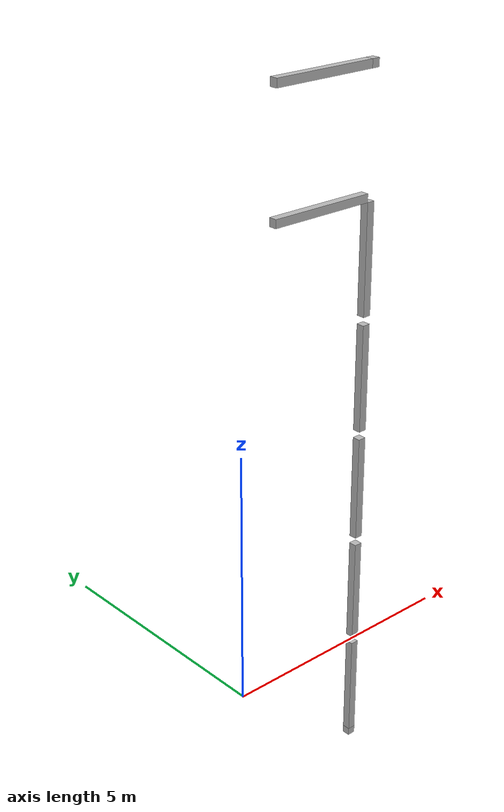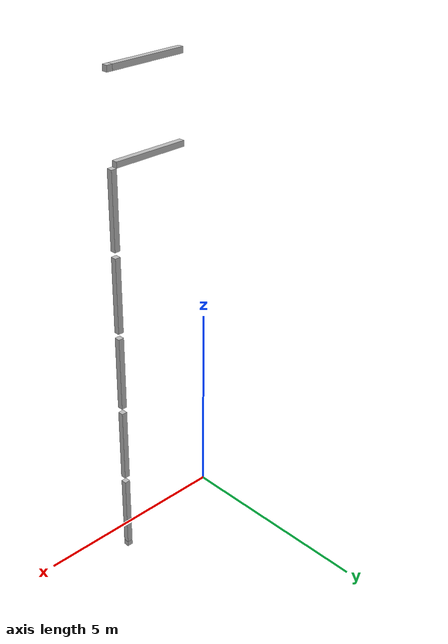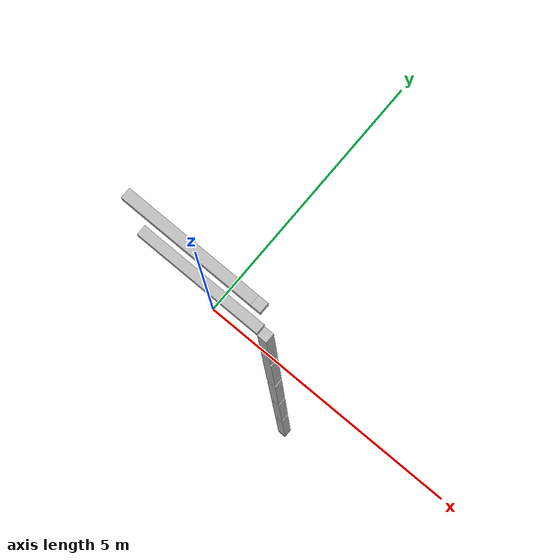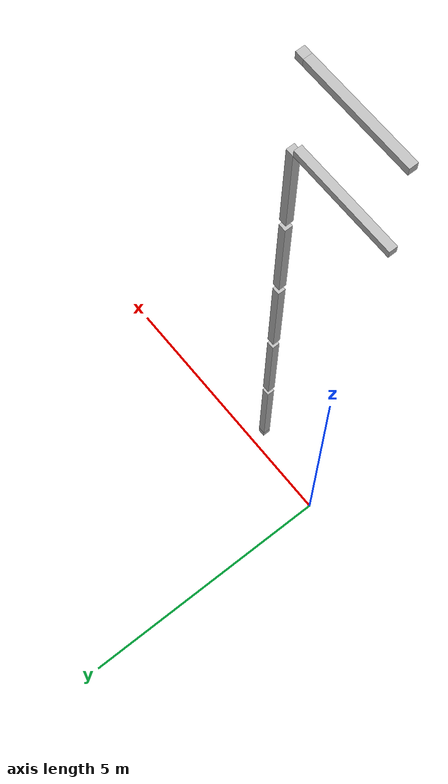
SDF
<sdf version="1.7">
 <world name="default">
  <model name="orthogonal_747_2.000.15_TS">
   <static>1</static>
   <link name="u_link_0_2_4">
    <inertial>
     <mass>1</mass>
     <inertia>
      <ixx>0.166667</ixx>
      <ixy>0</ixy>
      <ixz>0</ixz>
      <iyy>0.166667</iyy>
      <iyz>0</iyz>
      <izz>0.166667</izz>
     </inertia>
    </inertial>
    <pose>8.6 4.3 1.075 0 -0 0</pose>
    <visual name="visual_0">
     <laser_retro>421</laser_retro>
     <geometry><box><size>0.15 1e-06 0.15</size></box></geometry>
     <material>
      <script><name>Gazebo/Grey</name><uri>file://media/materials/scripts/gazebo.material</uri></script>
      <shader type="pixel"><normal_map>__default__</normal_map></shader>
      <ambient>0.678 0.498 0.659 1</ambient>
      <diffuse>0.7 0.7 0.7 1</diffuse>
      <specular>0.01 0.01 0.01 1</specular>
      <emissive>0 0 0 1</emissive>
     </material>
     <pose>0 -0.075 0 0 -0 0</pose>
     <transparency>1</transparency>
    </visual>
    <visual name="visual_1">
     <laser_retro>422</laser_retro>
     <geometry><box><size>0.15 1e-06 0.15</size></box></geometry>
     <material>
      <script><name>Gazebo/Grey</name><uri>file://media/materials/scripts/gazebo.material</uri></script>
      <shader type="pixel"><normal_map>__default__</normal_map></shader>
      <ambient>0.447 0.624 0.812 1</ambient>
      <diffuse>0.7 0.7 0.7 1</diffuse>
      <specular>0.01 0.01 0.01 1</specular>
      <emissive>0 0 0 1</emissive>
     </material>
     <pose>0 0.075 0 0 -0 0</pose>
     <transparency>1</transparency>
    </visual>
    <visual name="visual_2">
     <laser_retro>423</laser_retro>
     <geometry><box><size>0.15 0.15 1e-06</size></box></geometry>
     <material>
      <script><name>Gazebo/Grey</name><uri>file://media/materials/scripts/gazebo.material</uri></script>
      <shader type="pixel"><normal_map>__default__</normal_map></shader>
      <ambient>0.988 0.686 0.243 1</ambient>
      <diffuse>0.7 0.7 0.7 1</diffuse>
      <specular>0.01 0.01 0.01 1</specular>
      <emissive>0 0 0 1</emissive>
     </material>
     <pose>0 0 -0.075 0 -0 0</pose>
     <transparency>1</transparency>
    </visual>
    <visual name="visual_3">
     <laser_retro>424</laser_retro>
     <geometry><box><size>1e-06 0.15 0.15</size></box></geometry>
     <material>
      <script><name>Gazebo/Grey</name><uri>file://media/materials/scripts/gazebo.material</uri></script>
      <shader type="pixel"><normal_map>__default__</normal_map></shader>
      <ambient>0.988 0.914 0.31 1</ambient>
      <diffuse>0.7 0.7 0.7 1</diffuse>
      <specular>0.01 0.01 0.01 1</specular>
      <emissive>0 0 0 1</emissive>
     </material>
     <pose>0.075 0 0 0 -0 0</pose>
     <transparency>1</transparency>
    </visual>
    <visual name="visual_4">
     <laser_retro>425</laser_retro>
     <geometry><box><size>0.15 0.15 1e-06</size></box></geometry>
     <material>
      <script><name>Gazebo/Grey</name><uri>file://media/materials/scripts/gazebo.material</uri></script>
      <shader type="pixel"><normal_map>__default__</normal_map></shader>
      <ambient>0.937 0.161 0.161 1</ambient>
      <diffuse>0.7 0.7 0.7 1</diffuse>
      <specular>0.01 0.01 0.01 1</specular>
      <emissive>0 0 0 1</emissive>
     </material>
     <pose>0 0 0.075 0 -0 0</pose>
     <transparency>1</transparency>
    </visual>
    <visual name="visual_5">
     <laser_retro>426</laser_retro>
     <geometry><box><size>1e-06 0.15 0.15</size></box></geometry>
     <material>
      <script><name>Gazebo/Grey</name><uri>file://media/materials/scripts/gazebo.material</uri></script>
      <shader type="pixel"><normal_map>__default__</normal_map></shader>
      <ambient>0.541 0.886 0.204 1</ambient>
      <diffuse>0.7 0.7 0.7 1</diffuse>
      <specular>0.01 0.01 0.01 1</specular>
      <emissive>0 0 0 1</emissive>
     </material>
     <pose>-0.075 0 0 0 -0 0</pose>
     <transparency>1</transparency>
    </visual>
    <visual name="visual_texture">
     <geometry><box><size>0.149985 0.149985 0.149985</size></box></geometry>
     <material>
      <script>
       <uri>model://BASE_MODELS/simple_block_v2_textured/materials/scripts</uri>
       <uri>model://BASE_MODELS/simple_block_v2_textured/materials/textures</uri>
       <name>metal</name>
      </script>
     </material>
     <laser_retro>427</laser_retro>
    </visual>
    <collision name="collision">
     <geometry><box><size>0.15 0.15 0.15</size></box></geometry>
     <surface>
      <friction>
       <ode><mu>1</mu><mu2>1</mu2><fdir1>0 0 0</fdir1><slip1>0</slip1><slip2>0</slip2></ode>
       <torsional>
        <coefficient>1</coefficient>
        <patch_radius>0</patch_radius>
        <surface_radius>0</surface_radius>
        <use_patch_radius>1</use_patch_radius>
        <ode><slip>0</slip></ode>
       </torsional>
      </friction>
      <bounce><restitution_coefficient>0</restitution_coefficient><threshold>1e+06</threshold></bounce>
      <contact>
       <collide_without_contact>0</collide_without_contact>
       <collide_without_contact_bitmask>1</collide_without_contact_bitmask>
       <collide_bitmask>1</collide_bitmask>
       <ode>
        <soft_cfm>0</soft_cfm>
        <soft_erp>0.2</soft_erp>
        <kp>1e+13</kp>
        <kd>1</kd>
        <max_vel>0.01</max_vel>
        <min_depth>0</min_depth>
       </ode>
       <bullet>
        <split_impulse>1</split_impulse>
        <split_impulse_penetration_threshold>-0.01</split_impulse_penetration_threshold>
        <soft_cfm>0</soft_cfm>
        <soft_erp>0.2</soft_erp>
        <kp>1e+13</kp>
        <kd>1</kd>
       </bullet>
      </contact>
     </surface>
    </collision>
   </link>
   <link name="z_link_1_2_4">
    <inertial>
     <mass>1</mass>
     <inertia>
      <ixx>0.166667</ixx>
      <ixy>0</ixy>
      <ixz>0</ixz>
      <iyy>0.166667</iyy>
      <iyz>0</iyz>
      <izz>0.166667</izz>
     </inertia>
    </inertial>
    <pose>8.6 4.3 2.15 0 -0 0</pose>
    <visual name="visual_0">
     <laser_retro>1247</laser_retro>
     <geometry><box><size>0.15 1e-06 2</size></box></geometry>
     <material>
      <script><name>Gazebo/Grey</name><uri>file://media/materials/scripts/gazebo.material</uri></script>
      <shader type="pixel"><normal_map>__default__</normal_map></shader>
      <ambient>0.678 0.498 0.659 1</ambient>
      <diffuse>0.7 0.7 0.7 1</diffuse>
      <specular>0.01 0.01 0.01 1</specular>
      <emissive>0 0 0 1</emissive>
     </material>
     <pose>0 -0.075 0 0 -0 0</pose>
     <transparency>1</transparency>
    </visual>
    <visual name="visual_1">
     <laser_retro>1248</laser_retro>
     <geometry><box><size>0.15 1e-06 2</size></box></geometry>
     <material>
      <script><name>Gazebo/Grey</name><uri>file://media/materials/scripts/gazebo.material</uri></script>
      <shader type="pixel"><normal_map>__default__</normal_map></shader>
      <ambient>0.447 0.624 0.812 1</ambient>
      <diffuse>0.7 0.7 0.7 1</diffuse>
      <specular>0.01 0.01 0.01 1</specular>
      <emissive>0 0 0 1</emissive>
     </material>
     <pose>0 0.075 0 0 -0 0</pose>
     <transparency>1</transparency>
    </visual>
    <visual name="visual_2">
     <laser_retro>1249</laser_retro>
     <geometry><box><size>0.15 0.15 1e-06</size></box></geometry>
     <material>
      <script><name>Gazebo/Grey</name><uri>file://media/materials/scripts/gazebo.material</uri></script>
      <shader type="pixel"><normal_map>__default__</normal_map></shader>
      <ambient>0.988 0.686 0.243 1</ambient>
      <diffuse>0.7 0.7 0.7 1</diffuse>
      <specular>0.01 0.01 0.01 1</specular>
      <emissive>0 0 0 1</emissive>
     </material>
     <pose>0 0 -1 0 -0 0</pose>
     <transparency>1</transparency>
    </visual>
    <visual name="visual_3">
     <laser_retro>1250</laser_retro>
     <geometry><box><size>1e-06 0.15 2</size></box></geometry>
     <material>
      <script><name>Gazebo/Grey</name><uri>file://media/materials/scripts/gazebo.material</uri></script>
      <shader type="pixel"><normal_map>__default__</normal_map></shader>
      <ambient>0.988 0.914 0.31 1</ambient>
      <diffuse>0.7 0.7 0.7 1</diffuse>
      <specular>0.01 0.01 0.01 1</specular>
      <emissive>0 0 0 1</emissive>
     </material>
     <pose>0.075 0 0 0 -0 0</pose>
     <transparency>1</transparency>
    </visual>
    <visual name="visual_4">
     <laser_retro>1251</laser_retro>
     <geometry><box><size>0.15 0.15 1e-06</size></box></geometry>
     <material>
      <script><name>Gazebo/Grey</name><uri>file://media/materials/scripts/gazebo.material</uri></script>
      <shader type="pixel"><normal_map>__default__</normal_map></shader>
      <ambient>0.937 0.161 0.161 1</ambient>
      <diffuse>0.7 0.7 0.7 1</diffuse>
      <specular>0.01 0.01 0.01 1</specular>
      <emissive>0 0 0 1</emissive>
     </material>
     <pose>0 0 1 0 -0 0</pose>
     <transparency>1</transparency>
    </visual>
    <visual name="visual_5">
     <laser_retro>1252</laser_retro>
     <geometry><box><size>1e-06 0.15 2</size></box></geometry>
     <material>
      <script><name>Gazebo/Grey</name><uri>file://media/materials/scripts/gazebo.material</uri></script>
      <shader type="pixel"><normal_map>__default__</normal_map></shader>
      <ambient>0.541 0.886 0.204 1</ambient>
      <diffuse>0.7 0.7 0.7 1</diffuse>
      <specular>0.01 0.01 0.01 1</specular>
      <emissive>0 0 0 1</emissive>
     </material>
     <pose>-0.075 0 0 0 -0 0</pose>
     <transparency>1</transparency>
    </visual>
    <visual name="visual_texture">
     <geometry><box><size>0.149985 0.149985 1.9998</size></box></geometry>
     <material>
      <script>
       <uri>model://BASE_MODELS/simple_block_v2_textured/materials/scripts</uri>
       <uri>model://BASE_MODELS/simple_block_v2_textured/materials/textures</uri>
       <name>metal</name>
      </script>
     </material>
     <laser_retro>1253</laser_retro>
    </visual>
    <collision name="collision">
     <geometry><box><size>0.15 0.15 2</size></box></geometry>
     <surface>
      <friction>
       <ode><mu>1</mu><mu2>1</mu2><fdir1>0 0 0</fdir1><slip1>0</slip1><slip2>0</slip2></ode>
       <torsional>
        <coefficient>1</coefficient>
        <patch_radius>0</patch_radius>
        <surface_radius>0</surface_radius>
        <use_patch_radius>1</use_patch_radius>
        <ode><slip>0</slip></ode>
       </torsional>
      </friction>
      <bounce><restitution_coefficient>0</restitution_coefficient><threshold>1e+06</threshold></bounce>
      <contact>
       <collide_without_contact>0</collide_without_contact>
       <collide_without_contact_bitmask>1</collide_without_contact_bitmask>
       <collide_bitmask>1</collide_bitmask>
       <ode>
        <soft_cfm>0</soft_cfm>
        <soft_erp>0.2</soft_erp>
        <kp>1e+13</kp>
        <kd>1</kd>
        <max_vel>0.01</max_vel>
        <min_depth>0</min_depth>
       </ode>
       <bullet>
        <split_impulse>1</split_impulse>
        <split_impulse_penetration_threshold>-0.01</split_impulse_penetration_threshold>
        <soft_cfm>0</soft_cfm>
        <soft_erp>0.2</soft_erp>
        <kp>1e+13</kp>
        <kd>1</kd>
       </bullet>
      </contact>
     </surface>
    </collision>
   </link>
   <link name="z_link_2_2_4">
    <inertial>
     <mass>1</mass>
     <inertia>
      <ixx>0.166667</ixx>
      <ixy>0</ixy>
      <ixz>0</ixz>
      <iyy>0.166667</iyy>
      <iyz>0</iyz>
      <izz>0.166667</izz>
     </inertia>
    </inertial>
    <pose>8.6 4.3 4.3 0 -0 0</pose>
    <visual name="visual_0">
     <laser_retro>2150</laser_retro>
     <geometry><box><size>0.15 1e-06 2</size></box></geometry>
     <material>
      <script><name>Gazebo/Grey</name><uri>file://media/materials/scripts/gazebo.material</uri></script>
      <shader type="pixel"><normal_map>__default__</normal_map></shader>
      <ambient>0.678 0.498 0.659 1</ambient>
      <diffuse>0.7 0.7 0.7 1</diffuse>
      <specular>0.01 0.01 0.01 1</specular>
      <emissive>0 0 0 1</emissive>
     </material>
     <pose>0 -0.075 0 0 -0 0</pose>
     <transparency>1</transparency>
    </visual>
    <visual name="visual_1">
     <laser_retro>2151</laser_retro>
     <geometry><box><size>0.15 1e-06 2</size></box></geometry>
     <material>
      <script><name>Gazebo/Grey</name><uri>file://media/materials/scripts/gazebo.material</uri></script>
      <shader type="pixel"><normal_map>__default__</normal_map></shader>
      <ambient>0.447 0.624 0.812 1</ambient>
      <diffuse>0.7 0.7 0.7 1</diffuse>
      <specular>0.01 0.01 0.01 1</specular>
      <emissive>0 0 0 1</emissive>
     </material>
     <pose>0 0.075 0 0 -0 0</pose>
     <transparency>1</transparency>
    </visual>
    <visual name="visual_2">
     <laser_retro>2152</laser_retro>
     <geometry><box><size>0.15 0.15 1e-06</size></box></geometry>
     <material>
      <script><name>Gazebo/Grey</name><uri>file://media/materials/scripts/gazebo.material</uri></script>
      <shader type="pixel"><normal_map>__default__</normal_map></shader>
      <ambient>0.988 0.686 0.243 1</ambient>
      <diffuse>0.7 0.7 0.7 1</diffuse>
      <specular>0.01 0.01 0.01 1</specular>
      <emissive>0 0 0 1</emissive>
     </material>
     <pose>0 0 -1 0 -0 0</pose>
     <transparency>1</transparency>
    </visual>
    <visual name="visual_3">
     <laser_retro>2153</laser_retro>
     <geometry><box><size>1e-06 0.15 2</size></box></geometry>
     <material>
      <script><name>Gazebo/Grey</name><uri>file://media/materials/scripts/gazebo.material</uri></script>
      <shader type="pixel"><normal_map>__default__</normal_map></shader>
      <ambient>0.988 0.914 0.31 1</ambient>
      <diffuse>0.7 0.7 0.7 1</diffuse>
      <specular>0.01 0.01 0.01 1</specular>
      <emissive>0 0 0 1</emissive>
     </material>
     <pose>0.075 0 0 0 -0 0</pose>
     <transparency>1</transparency>
    </visual>
    <visual name="visual_4">
     <laser_retro>2154</laser_retro>
     <geometry><box><size>0.15 0.15 1e-06</size></box></geometry>
     <material>
      <script><name>Gazebo/Grey</name><uri>file://media/materials/scripts/gazebo.material</uri></script>
      <shader type="pixel"><normal_map>__default__</normal_map></shader>
      <ambient>0.937 0.161 0.161 1</ambient>
      <diffuse>0.7 0.7 0.7 1</diffuse>
      <specular>0.01 0.01 0.01 1</specular>
      <emissive>0 0 0 1</emissive>
     </material>
     <pose>0 0 1 0 -0 0</pose>
     <transparency>1</transparency>
    </visual>
    <visual name="visual_5">
     <laser_retro>2155</laser_retro>
     <geometry><box><size>1e-06 0.15 2</size></box></geometry>
     <material>
      <script><name>Gazebo/Grey</name><uri>file://media/materials/scripts/gazebo.material</uri></script>
      <shader type="pixel"><normal_map>__default__</normal_map></shader>
      <ambient>0.541 0.886 0.204 1</ambient>
      <diffuse>0.7 0.7 0.7 1</diffuse>
      <specular>0.01 0.01 0.01 1</specular>
      <emissive>0 0 0 1</emissive>
     </material>
     <pose>-0.075 0 0 0 -0 0</pose>
     <transparency>1</transparency>
    </visual>
    <visual name="visual_texture">
     <geometry><box><size>0.149985 0.149985 1.9998</size></box></geometry>
     <material>
      <script>
       <uri>model://BASE_MODELS/simple_block_v2_textured/materials/scripts</uri>
       <uri>model://BASE_MODELS/simple_block_v2_textured/materials/textures</uri>
       <name>metal</name>
      </script>
     </material>
     <laser_retro>2156</laser_retro>
    </visual>
    <collision name="collision">
     <geometry><box><size>0.15 0.15 2</size></box></geometry>
     <surface>
      <friction>
       <ode><mu>1</mu><mu2>1</mu2><fdir1>0 0 0</fdir1><slip1>0</slip1><slip2>0</slip2></ode>
       <torsional>
        <coefficient>1</coefficient>
        <patch_radius>0</patch_radius>
        <surface_radius>0</surface_radius>
        <use_patch_radius>1</use_patch_radius>
        <ode><slip>0</slip></ode>
       </torsional>
      </friction>
      <bounce><restitution_coefficient>0</restitution_coefficient><threshold>1e+06</threshold></bounce>
      <contact>
       <collide_without_contact>0</collide_without_contact>
       <collide_without_contact_bitmask>1</collide_without_contact_bitmask>
       <collide_bitmask>1</collide_bitmask>
       <ode>
        <soft_cfm>0</soft_cfm>
        <soft_erp>0.2</soft_erp>
        <kp>1e+13</kp>
        <kd>1</kd>
        <max_vel>0.01</max_vel>
        <min_depth>0</min_depth>
       </ode>
       <bullet>
        <split_impulse>1</split_impulse>
        <split_impulse_penetration_threshold>-0.01</split_impulse_penetration_threshold>
        <soft_cfm>0</soft_cfm>
        <soft_erp>0.2</soft_erp>
        <kp>1e+13</kp>
        <kd>1</kd>
       </bullet>
      </contact>
     </surface>
    </collision>
   </link>
   <link name="z_link_3_2_4">
    <inertial>
     <mass>1</mass>
     <inertia>
      <ixx>0.166667</ixx>
      <ixy>0</ixy>
      <ixz>0</ixz>
      <iyy>0.166667</iyy>
      <iyz>0</iyz>
      <izz>0.166667</izz>
     </inertia>
    </inertial>
    <pose>8.6 4.3 6.45 0 -0 0</pose>
    <visual name="visual_0">
     <laser_retro>3053</laser_retro>
     <geometry><box><size>0.15 1e-06 2</size></box></geometry>
     <material>
      <script><name>Gazebo/Grey</name><uri>file://media/materials/scripts/gazebo.material</uri></script>
      <shader type="pixel"><normal_map>__default__</normal_map></shader>
      <ambient>0.678 0.498 0.659 1</ambient>
      <diffuse>0.7 0.7 0.7 1</diffuse>
      <specular>0.01 0.01 0.01 1</specular>
      <emissive>0 0 0 1</emissive>
     </material>
     <pose>0 -0.075 0 0 -0 0</pose>
     <transparency>1</transparency>
    </visual>
    <visual name="visual_1">
     <laser_retro>3054</laser_retro>
     <geometry><box><size>0.15 1e-06 2</size></box></geometry>
     <material>
      <script><name>Gazebo/Grey</name><uri>file://media/materials/scripts/gazebo.material</uri></script>
      <shader type="pixel"><normal_map>__default__</normal_map></shader>
      <ambient>0.447 0.624 0.812 1</ambient>
      <diffuse>0.7 0.7 0.7 1</diffuse>
      <specular>0.01 0.01 0.01 1</specular>
      <emissive>0 0 0 1</emissive>
     </material>
     <pose>0 0.075 0 0 -0 0</pose>
     <transparency>1</transparency>
    </visual>
    <visual name="visual_2">
     <laser_retro>3055</laser_retro>
     <geometry><box><size>0.15 0.15 1e-06</size></box></geometry>
     <material>
      <script><name>Gazebo/Grey</name><uri>file://media/materials/scripts/gazebo.material</uri></script>
      <shader type="pixel"><normal_map>__default__</normal_map></shader>
      <ambient>0.988 0.686 0.243 1</ambient>
      <diffuse>0.7 0.7 0.7 1</diffuse>
      <specular>0.01 0.01 0.01 1</specular>
      <emissive>0 0 0 1</emissive>
     </material>
     <pose>0 0 -1 0 -0 0</pose>
     <transparency>1</transparency>
    </visual>
    <visual name="visual_3">
     <laser_retro>3056</laser_retro>
     <geometry><box><size>1e-06 0.15 2</size></box></geometry>
     <material>
      <script><name>Gazebo/Grey</name><uri>file://media/materials/scripts/gazebo.material</uri></script>
      <shader type="pixel"><normal_map>__default__</normal_map></shader>
      <ambient>0.988 0.914 0.31 1</ambient>
      <diffuse>0.7 0.7 0.7 1</diffuse>
      <specular>0.01 0.01 0.01 1</specular>
      <emissive>0 0 0 1</emissive>
     </material>
     <pose>0.075 0 0 0 -0 0</pose>
     <transparency>1</transparency>
    </visual>
    <visual name="visual_4">
     <laser_retro>3057</laser_retro>
     <geometry><box><size>0.15 0.15 1e-06</size></box></geometry>
     <material>
      <script><name>Gazebo/Grey</name><uri>file://media/materials/scripts/gazebo.material</uri></script>
      <shader type="pixel"><normal_map>__default__</normal_map></shader>
      <ambient>0.937 0.161 0.161 1</ambient>
      <diffuse>0.7 0.7 0.7 1</diffuse>
      <specular>0.01 0.01 0.01 1</specular>
      <emissive>0 0 0 1</emissive>
     </material>
     <pose>0 0 1 0 -0 0</pose>
     <transparency>1</transparency>
    </visual>
    <visual name="visual_5">
     <laser_retro>3058</laser_retro>
     <geometry><box><size>1e-06 0.15 2</size></box></geometry>
     <material>
      <script><name>Gazebo/Grey</name><uri>file://media/materials/scripts/gazebo.material</uri></script>
      <shader type="pixel"><normal_map>__default__</normal_map></shader>
      <ambient>0.541 0.886 0.204 1</ambient>
      <diffuse>0.7 0.7 0.7 1</diffuse>
      <specular>0.01 0.01 0.01 1</specular>
      <emissive>0 0 0 1</emissive>
     </material>
     <pose>-0.075 0 0 0 -0 0</pose>
     <transparency>1</transparency>
    </visual>
    <visual name="visual_texture">
     <geometry><box><size>0.149985 0.149985 1.9998</size></box></geometry>
     <material>
      <script>
       <uri>model://BASE_MODELS/simple_block_v2_textured/materials/scripts</uri>
       <uri>model://BASE_MODELS/simple_block_v2_textured/materials/textures</uri>
       <name>metal</name>
      </script>
     </material>
     <laser_retro>3059</laser_retro>
    </visual>
    <collision name="collision">
     <geometry><box><size>0.15 0.15 2</size></box></geometry>
     <surface>
      <friction>
       <ode><mu>1</mu><mu2>1</mu2><fdir1>0 0 0</fdir1><slip1>0</slip1><slip2>0</slip2></ode>
       <torsional>
        <coefficient>1</coefficient>
        <patch_radius>0</patch_radius>
        <surface_radius>0</surface_radius>
        <use_patch_radius>1</use_patch_radius>
        <ode><slip>0</slip></ode>
       </torsional>
      </friction>
      <bounce><restitution_coefficient>0</restitution_coefficient><threshold>1e+06</threshold></bounce>
      <contact>
       <collide_without_contact>0</collide_without_contact>
       <collide_without_contact_bitmask>1</collide_without_contact_bitmask>
       <collide_bitmask>1</collide_bitmask>
       <ode>
        <soft_cfm>0</soft_cfm>
        <soft_erp>0.2</soft_erp>
        <kp>1e+13</kp>
        <kd>1</kd>
        <max_vel>0.01</max_vel>
        <min_depth>0</min_depth>
       </ode>
       <bullet>
        <split_impulse>1</split_impulse>
        <split_impulse_penetration_threshold>-0.01</split_impulse_penetration_threshold>
        <soft_cfm>0</soft_cfm>
        <soft_erp>0.2</soft_erp>
        <kp>1e+13</kp>
        <kd>1</kd>
       </bullet>
      </contact>
     </surface>
    </collision>
   </link>
   <link name="z_link_4_2_4">
    <inertial>
     <mass>1</mass>
     <inertia>
      <ixx>0.166667</ixx>
      <ixy>0</ixy>
      <ixz>0</ixz>
      <iyy>0.166667</iyy>
      <iyz>0</iyz>
      <izz>0.166667</izz>
     </inertia>
    </inertial>
    <pose>8.6 4.3 8.6 0 -0 0</pose>
    <visual name="visual_0">
     <laser_retro>3956</laser_retro>
     <geometry><box><size>0.15 1e-06 2</size></box></geometry>
     <material>
      <script><name>Gazebo/Grey</name><uri>file://media/materials/scripts/gazebo.material</uri></script>
      <shader type="pixel"><normal_map>__default__</normal_map></shader>
      <ambient>0.678 0.498 0.659 1</ambient>
      <diffuse>0.7 0.7 0.7 1</diffuse>
      <specular>0.01 0.01 0.01 1</specular>
      <emissive>0 0 0 1</emissive>
     </material>
     <pose>0 -0.075 0 0 -0 0</pose>
     <transparency>1</transparency>
    </visual>
    <visual name="visual_1">
     <laser_retro>3957</laser_retro>
     <geometry><box><size>0.15 1e-06 2</size></box></geometry>
     <material>
      <script><name>Gazebo/Grey</name><uri>file://media/materials/scripts/gazebo.material</uri></script>
      <shader type="pixel"><normal_map>__default__</normal_map></shader>
      <ambient>0.447 0.624 0.812 1</ambient>
      <diffuse>0.7 0.7 0.7 1</diffuse>
      <specular>0.01 0.01 0.01 1</specular>
      <emissive>0 0 0 1</emissive>
     </material>
     <pose>0 0.075 0 0 -0 0</pose>
     <transparency>1</transparency>
    </visual>
    <visual name="visual_2">
     <laser_retro>3958</laser_retro>
     <geometry><box><size>0.15 0.15 1e-06</size></box></geometry>
     <material>
      <script><name>Gazebo/Grey</name><uri>file://media/materials/scripts/gazebo.material</uri></script>
      <shader type="pixel"><normal_map>__default__</normal_map></shader>
      <ambient>0.988 0.686 0.243 1</ambient>
      <diffuse>0.7 0.7 0.7 1</diffuse>
      <specular>0.01 0.01 0.01 1</specular>
      <emissive>0 0 0 1</emissive>
     </material>
     <pose>0 0 -1 0 -0 0</pose>
     <transparency>1</transparency>
    </visual>
    <visual name="visual_3">
     <laser_retro>3959</laser_retro>
     <geometry><box><size>1e-06 0.15 2</size></box></geometry>
     <material>
      <script><name>Gazebo/Grey</name><uri>file://media/materials/scripts/gazebo.material</uri></script>
      <shader type="pixel"><normal_map>__default__</normal_map></shader>
      <ambient>0.988 0.914 0.31 1</ambient>
      <diffuse>0.7 0.7 0.7 1</diffuse>
      <specular>0.01 0.01 0.01 1</specular>
      <emissive>0 0 0 1</emissive>
     </material>
     <pose>0.075 0 0 0 -0 0</pose>
     <transparency>1</transparency>
    </visual>
    <visual name="visual_4">
     <laser_retro>3960</laser_retro>
     <geometry><box><size>0.15 0.15 1e-06</size></box></geometry>
     <material>
      <script><name>Gazebo/Grey</name><uri>file://media/materials/scripts/gazebo.material</uri></script>
      <shader type="pixel"><normal_map>__default__</normal_map></shader>
      <ambient>0.937 0.161 0.161 1</ambient>
      <diffuse>0.7 0.7 0.7 1</diffuse>
      <specular>0.01 0.01 0.01 1</specular>
      <emissive>0 0 0 1</emissive>
     </material>
     <pose>0 0 1 0 -0 0</pose>
     <transparency>1</transparency>
    </visual>
    <visual name="visual_5">
     <laser_retro>3961</laser_retro>
     <geometry><box><size>1e-06 0.15 2</size></box></geometry>
     <material>
      <script><name>Gazebo/Grey</name><uri>file://media/materials/scripts/gazebo.material</uri></script>
      <shader type="pixel"><normal_map>__default__</normal_map></shader>
      <ambient>0.541 0.886 0.204 1</ambient>
      <diffuse>0.7 0.7 0.7 1</diffuse>
      <specular>0.01 0.01 0.01 1</specular>
      <emissive>0 0 0 1</emissive>
     </material>
     <pose>-0.075 0 0 0 -0 0</pose>
     <transparency>1</transparency>
    </visual>
    <visual name="visual_texture">
     <geometry><box><size>0.149985 0.149985 1.9998</size></box></geometry>
     <material>
      <script>
       <uri>model://BASE_MODELS/simple_block_v2_textured/materials/scripts</uri>
       <uri>model://BASE_MODELS/simple_block_v2_textured/materials/textures</uri>
       <name>metal</name>
      </script>
     </material>
     <laser_retro>3962</laser_retro>
    </visual>
    <collision name="collision">
     <geometry><box><size>0.15 0.15 2</size></box></geometry>
     <surface>
      <friction>
       <ode><mu>1</mu><mu2>1</mu2><fdir1>0 0 0</fdir1><slip1>0</slip1><slip2>0</slip2></ode>
       <torsional>
        <coefficient>1</coefficient>
        <patch_radius>0</patch_radius>
        <surface_radius>0</surface_radius>
        <use_patch_radius>1</use_patch_radius>
        <ode><slip>0</slip></ode>
       </torsional>
      </friction>
      <bounce><restitution_coefficient>0</restitution_coefficient><threshold>1e+06</threshold></bounce>
      <contact>
       <collide_without_contact>0</collide_without_contact>
       <collide_without_contact_bitmask>1</collide_without_contact_bitmask>
       <collide_bitmask>1</collide_bitmask>
       <ode>
        <soft_cfm>0</soft_cfm>
        <soft_erp>0.2</soft_erp>
        <kp>1e+13</kp>
        <kd>1</kd>
        <max_vel>0.01</max_vel>
        <min_depth>0</min_depth>
       </ode>
       <bullet>
        <split_impulse>1</split_impulse>
        <split_impulse_penetration_threshold>-0.01</split_impulse_penetration_threshold>
        <soft_cfm>0</soft_cfm>
        <soft_erp>0.2</soft_erp>
        <kp>1e+13</kp>
        <kd>1</kd>
       </bullet>
      </contact>
     </surface>
    </collision>
   </link>
   <link name="x_link_5_2_3">
    <inertial>
     <mass>1</mass>
     <inertia>
      <ixx>0.166667</ixx>
      <ixy>0</ixy>
      <ixz>0</ixz>
      <iyy>0.166667</iyy>
      <iyz>0</iyz>
      <izz>0.166667</izz>
     </inertia>
    </inertial>
    <pose>7.525 4.3 11.825 0 -0 0</pose>
    <visual name="visual_0">
     <laser_retro>4824</laser_retro>
     <geometry><box><size>2 1e-06 0.15</size></box></geometry>
     <material>
      <script><name>Gazebo/Grey</name><uri>file://media/materials/scripts/gazebo.material</uri></script>
      <shader type="pixel"><normal_map>__default__</normal_map></shader>
      <ambient>0.678 0.498 0.659 1</ambient>
      <diffuse>0.7 0.7 0.7 1</diffuse>
      <specular>0.01 0.01 0.01 1</specular>
      <emissive>0 0 0 1</emissive>
     </material>
     <pose>0 -0.075 0 0 -0 0</pose>
     <transparency>1</transparency>
    </visual>
    <visual name="visual_1">
     <laser_retro>4825</laser_retro>
     <geometry><box><size>2 1e-06 0.15</size></box></geometry>
     <material>
      <script><name>Gazebo/Grey</name><uri>file://media/materials/scripts/gazebo.material</uri></script>
      <shader type="pixel"><normal_map>__default__</normal_map></shader>
      <ambient>0.447 0.624 0.812 1</ambient>
      <diffuse>0.7 0.7 0.7 1</diffuse>
      <specular>0.01 0.01 0.01 1</specular>
      <emissive>0 0 0 1</emissive>
     </material>
     <pose>0 0.075 0 0 -0 0</pose>
     <transparency>1</transparency>
    </visual>
    <visual name="visual_2">
     <laser_retro>4826</laser_retro>
     <geometry><box><size>2 0.15 1e-06</size></box></geometry>
     <material>
      <script><name>Gazebo/Grey</name><uri>file://media/materials/scripts/gazebo.material</uri></script>
      <shader type="pixel"><normal_map>__default__</normal_map></shader>
      <ambient>0.988 0.686 0.243 1</ambient>
      <diffuse>0.7 0.7 0.7 1</diffuse>
      <specular>0.01 0.01 0.01 1</specular>
      <emissive>0 0 0 1</emissive>
     </material>
     <pose>0 0 -0.075 0 -0 0</pose>
     <transparency>1</transparency>
    </visual>
    <visual name="visual_3">
     <laser_retro>4827</laser_retro>
     <geometry><box><size>1e-06 0.15 0.15</size></box></geometry>
     <material>
      <script><name>Gazebo/Grey</name><uri>file://media/materials/scripts/gazebo.material</uri></script>
      <shader type="pixel"><normal_map>__default__</normal_map></shader>
      <ambient>0.988 0.914 0.31 1</ambient>
      <diffuse>0.7 0.7 0.7 1</diffuse>
      <specular>0.01 0.01 0.01 1</specular>
      <emissive>0 0 0 1</emissive>
     </material>
     <pose>1 0 0 0 -0 0</pose>
     <transparency>1</transparency>
    </visual>
    <visual name="visual_4">
     <laser_retro>4828</laser_retro>
     <geometry><box><size>2 0.15 1e-06</size></box></geometry>
     <material>
      <script><name>Gazebo/Grey</name><uri>file://media/materials/scripts/gazebo.material</uri></script>
      <shader type="pixel"><normal_map>__default__</normal_map></shader>
      <ambient>0.937 0.161 0.161 1</ambient>
      <diffuse>0.7 0.7 0.7 1</diffuse>
      <specular>0.01 0.01 0.01 1</specular>
      <emissive>0 0 0 1</emissive>
     </material>
     <pose>0 0 0.075 0 -0 0</pose>
     <transparency>1</transparency>
    </visual>
    <visual name="visual_5">
     <laser_retro>4829</laser_retro>
     <geometry><box><size>1e-06 0.15 0.15</size></box></geometry>
     <material>
      <script><name>Gazebo/Grey</name><uri>file://media/materials/scripts/gazebo.material</uri></script>
      <shader type="pixel"><normal_map>__default__</normal_map></shader>
      <ambient>0.541 0.886 0.204 1</ambient>
      <diffuse>0.7 0.7 0.7 1</diffuse>
      <specular>0.01 0.01 0.01 1</specular>
      <emissive>0 0 0 1</emissive>
     </material>
     <pose>-1 0 0 0 -0 0</pose>
     <transparency>1</transparency>
    </visual>
    <visual name="visual_texture">
     <geometry><box><size>1.9998 0.149985 0.149985</size></box></geometry>
     <material>
      <script>
       <uri>model://BASE_MODELS/simple_block_v2_textured/materials/scripts</uri>
       <uri>model://BASE_MODELS/simple_block_v2_textured/materials/textures</uri>
       <name>metal</name>
      </script>
     </material>
     <laser_retro>4830</laser_retro>
    </visual>
    <collision name="collision">
     <geometry><box><size>2 0.15 0.15</size></box></geometry>
     <surface>
      <friction>
       <ode><mu>1</mu><mu2>1</mu2><fdir1>0 0 0</fdir1><slip1>0</slip1><slip2>0</slip2></ode>
       <torsional>
        <coefficient>1</coefficient>
        <patch_radius>0</patch_radius>
        <surface_radius>0</surface_radius>
        <use_patch_radius>1</use_patch_radius>
        <ode><slip>0</slip></ode>
       </torsional>
      </friction>
      <bounce><restitution_coefficient>0</restitution_coefficient><threshold>1e+06</threshold></bounce>
      <contact>
       <collide_without_contact>0</collide_without_contact>
       <collide_without_contact_bitmask>1</collide_without_contact_bitmask>
       <collide_bitmask>1</collide_bitmask>
       <ode>
        <soft_cfm>0</soft_cfm>
        <soft_erp>0.2</soft_erp>
        <kp>1e+13</kp>
        <kd>1</kd>
        <max_vel>0.01</max_vel>
        <min_depth>0</min_depth>
       </ode>
       <bullet>
        <split_impulse>1</split_impulse>
        <split_impulse_penetration_threshold>-0.01</split_impulse_penetration_threshold>
        <soft_cfm>0</soft_cfm>
        <soft_erp>0.2</soft_erp>
        <kp>1e+13</kp>
        <kd>1</kd>
       </bullet>
      </contact>
     </surface>
    </collision>
   </link>
   <link name="z_link_5_2_4">
    <inertial>
     <mass>1</mass>
     <inertia>
      <ixx>0.166667</ixx>
      <ixy>0</ixy>
      <ixz>0</ixz>
      <iyy>0.166667</iyy>
      <iyz>0</iyz>
      <izz>0.166667</izz>
     </inertia>
    </inertial>
    <pose>8.6 4.3 10.75 0 -0 0</pose>
    <visual name="visual_0">
     <laser_retro>4859</laser_retro>
     <geometry><box><size>0.15 1e-06 2</size></box></geometry>
     <material>
      <script><name>Gazebo/Grey</name><uri>file://media/materials/scripts/gazebo.material</uri></script>
      <shader type="pixel"><normal_map>__default__</normal_map></shader>
      <ambient>0.678 0.498 0.659 1</ambient>
      <diffuse>0.7 0.7 0.7 1</diffuse>
      <specular>0.01 0.01 0.01 1</specular>
      <emissive>0 0 0 1</emissive>
     </material>
     <pose>0 -0.075 0 0 -0 0</pose>
     <transparency>1</transparency>
    </visual>
    <visual name="visual_1">
     <laser_retro>4860</laser_retro>
     <geometry><box><size>0.15 1e-06 2</size></box></geometry>
     <material>
      <script><name>Gazebo/Grey</name><uri>file://media/materials/scripts/gazebo.material</uri></script>
      <shader type="pixel"><normal_map>__default__</normal_map></shader>
      <ambient>0.447 0.624 0.812 1</ambient>
      <diffuse>0.7 0.7 0.7 1</diffuse>
      <specular>0.01 0.01 0.01 1</specular>
      <emissive>0 0 0 1</emissive>
     </material>
     <pose>0 0.075 0 0 -0 0</pose>
     <transparency>1</transparency>
    </visual>
    <visual name="visual_2">
     <laser_retro>4861</laser_retro>
     <geometry><box><size>0.15 0.15 1e-06</size></box></geometry>
     <material>
      <script><name>Gazebo/Grey</name><uri>file://media/materials/scripts/gazebo.material</uri></script>
      <shader type="pixel"><normal_map>__default__</normal_map></shader>
      <ambient>0.988 0.686 0.243 1</ambient>
      <diffuse>0.7 0.7 0.7 1</diffuse>
      <specular>0.01 0.01 0.01 1</specular>
      <emissive>0 0 0 1</emissive>
     </material>
     <pose>0 0 -1 0 -0 0</pose>
     <transparency>1</transparency>
    </visual>
    <visual name="visual_3">
     <laser_retro>4862</laser_retro>
     <geometry><box><size>1e-06 0.15 2</size></box></geometry>
     <material>
      <script><name>Gazebo/Grey</name><uri>file://media/materials/scripts/gazebo.material</uri></script>
      <shader type="pixel"><normal_map>__default__</normal_map></shader>
      <ambient>0.988 0.914 0.31 1</ambient>
      <diffuse>0.7 0.7 0.7 1</diffuse>
      <specular>0.01 0.01 0.01 1</specular>
      <emissive>0 0 0 1</emissive>
     </material>
     <pose>0.075 0 0 0 -0 0</pose>
     <transparency>1</transparency>
    </visual>
    <visual name="visual_4">
     <laser_retro>4863</laser_retro>
     <geometry><box><size>0.15 0.15 1e-06</size></box></geometry>
     <material>
      <script><name>Gazebo/Grey</name><uri>file://media/materials/scripts/gazebo.material</uri></script>
      <shader type="pixel"><normal_map>__default__</normal_map></shader>
      <ambient>0.937 0.161 0.161 1</ambient>
      <diffuse>0.7 0.7 0.7 1</diffuse>
      <specular>0.01 0.01 0.01 1</specular>
      <emissive>0 0 0 1</emissive>
     </material>
     <pose>0 0 1 0 -0 0</pose>
     <transparency>1</transparency>
    </visual>
    <visual name="visual_5">
     <laser_retro>4864</laser_retro>
     <geometry><box><size>1e-06 0.15 2</size></box></geometry>
     <material>
      <script><name>Gazebo/Grey</name><uri>file://media/materials/scripts/gazebo.material</uri></script>
      <shader type="pixel"><normal_map>__default__</normal_map></shader>
      <ambient>0.541 0.886 0.204 1</ambient>
      <diffuse>0.7 0.7 0.7 1</diffuse>
      <specular>0.01 0.01 0.01 1</specular>
      <emissive>0 0 0 1</emissive>
     </material>
     <pose>-0.075 0 0 0 -0 0</pose>
     <transparency>1</transparency>
    </visual>
    <visual name="visual_texture">
     <geometry><box><size>0.149985 0.149985 1.9998</size></box></geometry>
     <material>
      <script>
       <uri>model://BASE_MODELS/simple_block_v2_textured/materials/scripts</uri>
       <uri>model://BASE_MODELS/simple_block_v2_textured/materials/textures</uri>
       <name>metal</name>
      </script>
     </material>
     <laser_retro>4865</laser_retro>
    </visual>
    <collision name="collision">
     <geometry><box><size>0.15 0.15 2</size></box></geometry>
     <surface>
      <friction>
       <ode><mu>1</mu><mu2>1</mu2><fdir1>0 0 0</fdir1><slip1>0</slip1><slip2>0</slip2></ode>
       <torsional>
        <coefficient>1</coefficient>
        <patch_radius>0</patch_radius>
        <surface_radius>0</surface_radius>
        <use_patch_radius>1</use_patch_radius>
        <ode><slip>0</slip></ode>
       </torsional>
      </friction>
      <bounce><restitution_coefficient>0</restitution_coefficient><threshold>1e+06</threshold></bounce>
      <contact>
       <collide_without_contact>0</collide_without_contact>
       <collide_without_contact_bitmask>1</collide_without_contact_bitmask>
       <collide_bitmask>1</collide_bitmask>
       <ode>
        <soft_cfm>0</soft_cfm>
        <soft_erp>0.2</soft_erp>
        <kp>1e+13</kp>
        <kd>1</kd>
        <max_vel>0.01</max_vel>
        <min_depth>0</min_depth>
       </ode>
       <bullet>
        <split_impulse>1</split_impulse>
        <split_impulse_penetration_threshold>-0.01</split_impulse_penetration_threshold>
        <soft_cfm>0</soft_cfm>
        <soft_erp>0.2</soft_erp>
        <kp>1e+13</kp>
        <kd>1</kd>
       </bullet>
      </contact>
     </surface>
    </collision>
   </link>
   <link name="x_link_6_2_3">
    <inertial>
     <mass>1</mass>
     <inertia>
      <ixx>0.166667</ixx>
      <ixy>0</ixy>
      <ixz>0</ixz>
      <iyy>0.166667</iyy>
      <iyz>0</iyz>
      <izz>0.166667</izz>
     </inertia>
    </inertial>
    <pose>7.525 4.3 13.975 0 -0 0</pose>
    <visual name="visual_0">
     <laser_retro>5783</laser_retro>
     <geometry><box><size>2 1e-06 0.15</size></box></geometry>
     <material>
      <script><name>Gazebo/Grey</name><uri>file://media/materials/scripts/gazebo.material</uri></script>
      <shader type="pixel"><normal_map>__default__</normal_map></shader>
      <ambient>0.678 0.498 0.659 1</ambient>
      <diffuse>0.7 0.7 0.7 1</diffuse>
      <specular>0.01 0.01 0.01 1</specular>
      <emissive>0 0 0 1</emissive>
     </material>
     <pose>0 -0.075 0 0 -0 0</pose>
     <transparency>1</transparency>
    </visual>
    <visual name="visual_1">
     <laser_retro>5784</laser_retro>
     <geometry><box><size>2 1e-06 0.15</size></box></geometry>
     <material>
      <script><name>Gazebo/Grey</name><uri>file://media/materials/scripts/gazebo.material</uri></script>
      <shader type="pixel"><normal_map>__default__</normal_map></shader>
      <ambient>0.447 0.624 0.812 1</ambient>
      <diffuse>0.7 0.7 0.7 1</diffuse>
      <specular>0.01 0.01 0.01 1</specular>
      <emissive>0 0 0 1</emissive>
     </material>
     <pose>0 0.075 0 0 -0 0</pose>
     <transparency>1</transparency>
    </visual>
    <visual name="visual_2">
     <laser_retro>5785</laser_retro>
     <geometry><box><size>2 0.15 1e-06</size></box></geometry>
     <material>
      <script><name>Gazebo/Grey</name><uri>file://media/materials/scripts/gazebo.material</uri></script>
      <shader type="pixel"><normal_map>__default__</normal_map></shader>
      <ambient>0.988 0.686 0.243 1</ambient>
      <diffuse>0.7 0.7 0.7 1</diffuse>
      <specular>0.01 0.01 0.01 1</specular>
      <emissive>0 0 0 1</emissive>
     </material>
     <pose>0 0 -0.075 0 -0 0</pose>
     <transparency>1</transparency>
    </visual>
    <visual name="visual_3">
     <laser_retro>5786</laser_retro>
     <geometry><box><size>1e-06 0.15 0.15</size></box></geometry>
     <material>
      <script><name>Gazebo/Grey</name><uri>file://media/materials/scripts/gazebo.material</uri></script>
      <shader type="pixel"><normal_map>__default__</normal_map></shader>
      <ambient>0.988 0.914 0.31 1</ambient>
      <diffuse>0.7 0.7 0.7 1</diffuse>
      <specular>0.01 0.01 0.01 1</specular>
      <emissive>0 0 0 1</emissive>
     </material>
     <pose>1 0 0 0 -0 0</pose>
     <transparency>1</transparency>
    </visual>
    <visual name="visual_4">
     <laser_retro>5787</laser_retro>
     <geometry><box><size>2 0.15 1e-06</size></box></geometry>
     <material>
      <script><name>Gazebo/Grey</name><uri>file://media/materials/scripts/gazebo.material</uri></script>
      <shader type="pixel"><normal_map>__default__</normal_map></shader>
      <ambient>0.937 0.161 0.161 1</ambient>
      <diffuse>0.7 0.7 0.7 1</diffuse>
      <specular>0.01 0.01 0.01 1</specular>
      <emissive>0 0 0 1</emissive>
     </material>
     <pose>0 0 0.075 0 -0 0</pose>
     <transparency>1</transparency>
    </visual>
    <visual name="visual_5">
     <laser_retro>5788</laser_retro>
     <geometry><box><size>1e-06 0.15 0.15</size></box></geometry>
     <material>
      <script><name>Gazebo/Grey</name><uri>file://media/materials/scripts/gazebo.material</uri></script>
      <shader type="pixel"><normal_map>__default__</normal_map></shader>
      <ambient>0.541 0.886 0.204 1</ambient>
      <diffuse>0.7 0.7 0.7 1</diffuse>
      <specular>0.01 0.01 0.01 1</specular>
      <emissive>0 0 0 1</emissive>
     </material>
     <pose>-1 0 0 0 -0 0</pose>
     <transparency>1</transparency>
    </visual>
    <visual name="visual_texture">
     <geometry><box><size>1.9998 0.149985 0.149985</size></box></geometry>
     <material>
      <script>
       <uri>model://BASE_MODELS/simple_block_v2_textured/materials/scripts</uri>
       <uri>model://BASE_MODELS/simple_block_v2_textured/materials/textures</uri>
       <name>metal</name>
      </script>
     </material>
     <laser_retro>5789</laser_retro>
    </visual>
    <collision name="collision">
     <geometry><box><size>2 0.15 0.15</size></box></geometry>
     <surface>
      <friction>
       <ode><mu>1</mu><mu2>1</mu2><fdir1>0 0 0</fdir1><slip1>0</slip1><slip2>0</slip2></ode>
       <torsional>
        <coefficient>1</coefficient>
        <patch_radius>0</patch_radius>
        <surface_radius>0</surface_radius>
        <use_patch_radius>1</use_patch_radius>
        <ode><slip>0</slip></ode>
       </torsional>
      </friction>
      <bounce><restitution_coefficient>0</restitution_coefficient><threshold>1e+06</threshold></bounce>
      <contact>
       <collide_without_contact>0</collide_without_contact>
       <collide_without_contact_bitmask>1</collide_without_contact_bitmask>
       <collide_bitmask>1</collide_bitmask>
       <ode>
        <soft_cfm>0</soft_cfm>
        <soft_erp>0.2</soft_erp>
        <kp>1e+13</kp>
        <kd>1</kd>
        <max_vel>0.01</max_vel>
        <min_depth>0</min_depth>
       </ode>
       <bullet>
        <split_impulse>1</split_impulse>
        <split_impulse_penetration_threshold>-0.01</split_impulse_penetration_threshold>
        <soft_cfm>0</soft_cfm>
        <soft_erp>0.2</soft_erp>
        <kp>1e+13</kp>
        <kd>1</kd>
       </bullet>
      </contact>
     </surface>
    </collision>
   </link>
   <link name="u_link_6_2_4">
    <inertial>
     <mass>1</mass>
     <inertia>
      <ixx>0.166667</ixx>
      <ixy>0</ixy>
      <ixz>0</ixz>
      <iyy>0.166667</iyy>
      <iyz>0</iyz>
      <izz>0.166667</izz>
     </inertia>
    </inertial>
    <pose>8.6 4.3 13.975 0 -0 0</pose>
    <visual name="visual_0">
     <laser_retro>5825</laser_retro>
     <geometry><box><size>0.15 1e-06 0.15</size></box></geometry>
     <material>
      <script><name>Gazebo/Grey</name><uri>file://media/materials/scripts/gazebo.material</uri></script>
      <shader type="pixel"><normal_map>__default__</normal_map></shader>
      <ambient>0.678 0.498 0.659 1</ambient>
      <diffuse>0.7 0.7 0.7 1</diffuse>
      <specular>0.01 0.01 0.01 1</specular>
      <emissive>0 0 0 1</emissive>
     </material>
     <pose>0 -0.075 0 0 -0 0</pose>
     <transparency>1</transparency>
    </visual>
    <visual name="visual_1">
     <laser_retro>5826</laser_retro>
     <geometry><box><size>0.15 1e-06 0.15</size></box></geometry>
     <material>
      <script><name>Gazebo/Grey</name><uri>file://media/materials/scripts/gazebo.material</uri></script>
      <shader type="pixel"><normal_map>__default__</normal_map></shader>
      <ambient>0.447 0.624 0.812 1</ambient>
      <diffuse>0.7 0.7 0.7 1</diffuse>
      <specular>0.01 0.01 0.01 1</specular>
      <emissive>0 0 0 1</emissive>
     </material>
     <pose>0 0.075 0 0 -0 0</pose>
     <transparency>1</transparency>
    </visual>
    <visual name="visual_2">
     <laser_retro>5827</laser_retro>
     <geometry><box><size>0.15 0.15 1e-06</size></box></geometry>
     <material>
      <script><name>Gazebo/Grey</name><uri>file://media/materials/scripts/gazebo.material</uri></script>
      <shader type="pixel"><normal_map>__default__</normal_map></shader>
      <ambient>0.988 0.686 0.243 1</ambient>
      <diffuse>0.7 0.7 0.7 1</diffuse>
      <specular>0.01 0.01 0.01 1</specular>
      <emissive>0 0 0 1</emissive>
     </material>
     <pose>0 0 -0.075 0 -0 0</pose>
     <transparency>1</transparency>
    </visual>
    <visual name="visual_3">
     <laser_retro>5828</laser_retro>
     <geometry><box><size>1e-06 0.15 0.15</size></box></geometry>
     <material>
      <script><name>Gazebo/Grey</name><uri>file://media/materials/scripts/gazebo.material</uri></script>
      <shader type="pixel"><normal_map>__default__</normal_map></shader>
      <ambient>0.988 0.914 0.31 1</ambient>
      <diffuse>0.7 0.7 0.7 1</diffuse>
      <specular>0.01 0.01 0.01 1</specular>
      <emissive>0 0 0 1</emissive>
     </material>
     <pose>0.075 0 0 0 -0 0</pose>
     <transparency>1</transparency>
    </visual>
    <visual name="visual_4">
     <laser_retro>5829</laser_retro>
     <geometry><box><size>0.15 0.15 1e-06</size></box></geometry>
     <material>
      <script><name>Gazebo/Grey</name><uri>file://media/materials/scripts/gazebo.material</uri></script>
      <shader type="pixel"><normal_map>__default__</normal_map></shader>
      <ambient>0.937 0.161 0.161 1</ambient>
      <diffuse>0.7 0.7 0.7 1</diffuse>
      <specular>0.01 0.01 0.01 1</specular>
      <emissive>0 0 0 1</emissive>
     </material>
     <pose>0 0 0.075 0 -0 0</pose>
     <transparency>1</transparency>
    </visual>
    <visual name="visual_5">
     <laser_retro>5830</laser_retro>
     <geometry><box><size>1e-06 0.15 0.15</size></box></geometry>
     <material>
      <script><name>Gazebo/Grey</name><uri>file://media/materials/scripts/gazebo.material</uri></script>
      <shader type="pixel"><normal_map>__default__</normal_map></shader>
      <ambient>0.541 0.886 0.204 1</ambient>
      <diffuse>0.7 0.7 0.7 1</diffuse>
      <specular>0.01 0.01 0.01 1</specular>
      <emissive>0 0 0 1</emissive>
     </material>
     <pose>-0.075 0 0 0 -0 0</pose>
     <transparency>1</transparency>
    </visual>
    <visual name="visual_texture">
     <geometry><box><size>0.149985 0.149985 0.149985</size></box></geometry>
     <material>
      <script>
       <uri>model://BASE_MODELS/simple_block_v2_textured/materials/scripts</uri>
       <uri>model://BASE_MODELS/simple_block_v2_textured/materials/textures</uri>
       <name>metal</name>
      </script>
     </material>
     <laser_retro>5831</laser_retro>
    </visual>
    <collision name="collision">
     <geometry><box><size>0.15 0.15 0.15</size></box></geometry>
     <surface>
      <friction>
       <ode><mu>1</mu><mu2>1</mu2><fdir1>0 0 0</fdir1><slip1>0</slip1><slip2>0</slip2></ode>
       <torsional>
        <coefficient>1</coefficient>
        <patch_radius>0</patch_radius>
        <surface_radius>0</surface_radius>
        <use_patch_radius>1</use_patch_radius>
        <ode><slip>0</slip></ode>
       </torsional>
      </friction>
      <bounce><restitution_coefficient>0</restitution_coefficient><threshold>1e+06</threshold></bounce>
      <contact>
       <collide_without_contact>0</collide_without_contact>
       <collide_without_contact_bitmask>1</collide_without_contact_bitmask>
       <collide_bitmask>1</collide_bitmask>
       <ode>
        <soft_cfm>0</soft_cfm>
        <soft_erp>0.2</soft_erp>
        <kp>1e+13</kp>
        <kd>1</kd>
        <max_vel>0.01</max_vel>
        <min_depth>0</min_depth>
       </ode>
       <bullet>
        <split_impulse>1</split_impulse>
        <split_impulse_penetration_threshold>-0.01</split_impulse_penetration_threshold>
        <soft_cfm>0</soft_cfm>
        <soft_erp>0.2</soft_erp>
        <kp>1e+13</kp>
        <kd>1</kd>
       </bullet>
      </contact>
     </surface>
    </collision>
   </link>
   <pose>-6.47624 -5 -2.5 0 -0 0</pose>
  </model>
 </world>
</sdf>
